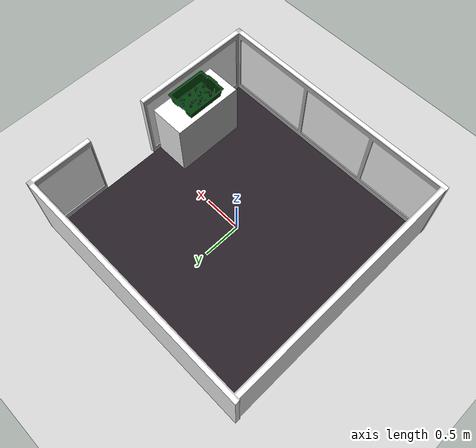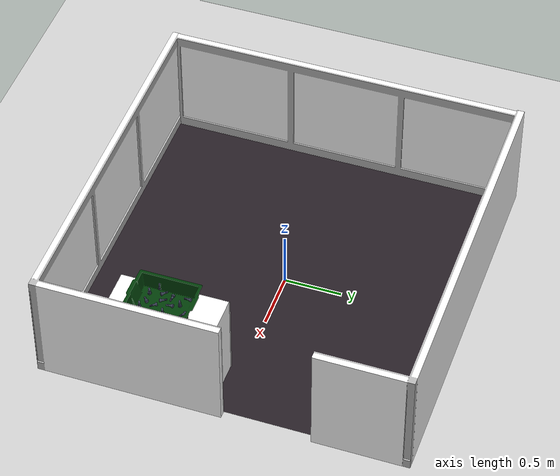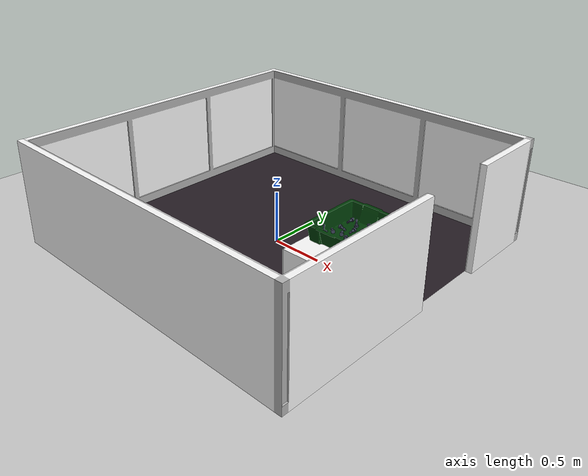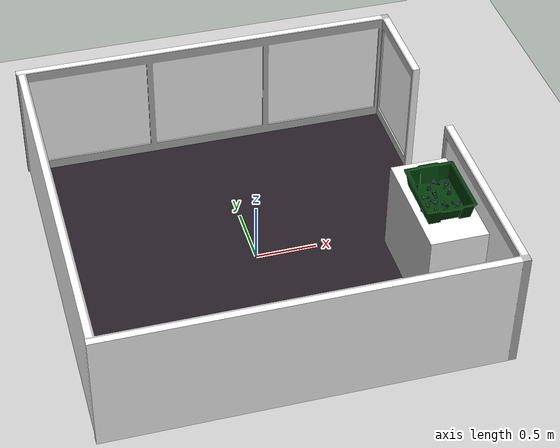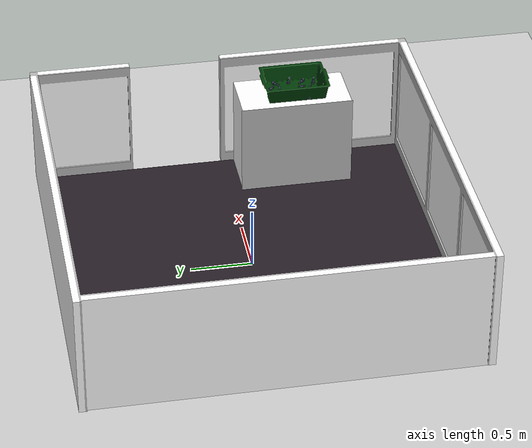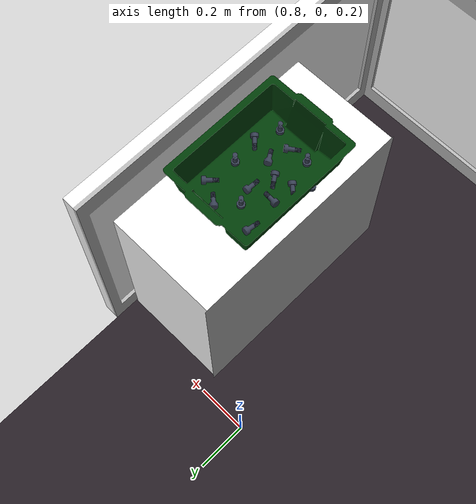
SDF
<?xml version="1.0" ?>
<sdf version="1.4">
  <world name="default">

    <include>
      <uri>model://ground_plane</uri>
      <pose>0 0 -0.005 0 0 0</pose>
    </include>

    <include>
      <uri>model://fetchit_arena</uri>
      <name>fetchit_arena1</name>
      <pose>0 0 0 0 0 0</pose>
    </include>

    <include>
      <uri>model://fetchit_table_em</uri>
      <name>fetchit_table_em1</name>
      <pose>1.28714 -0.565 0.0 0 0 -1.57</pose>
    </include>

    <include>
      <uri>model://screw_bin</uri>
      <name>screw_bin</name>
      <pose>1.273518 -0.580070 0.791994 0 0 -1.570000</pose>
    </include>

    <include>
      <uri>model://gearbox_bolt_grey</uri>
      <name>gearbox_bolt_grey1</name>
      <pose>1.19481 -0.727808 0.802789 0 0 0</pose>
    </include>

    <include>
      <uri>model://gearbox_bolt_grey</uri>
      <name>gearbox_bolt_grey2</name>
      <pose>1.11789 -0.669909 0.802789 0 0 0</pose>
    </include>

    <include>
      <uri>model://gearbox_bolt_grey</uri>
      <name>gearbox_bolt_grey3</name>
      <pose>1.350704 -0.754017 0.802789 0 0 -1.308124</pose>
    </include>

    <include>
      <uri>model://gearbox_bolt_grey</uri>
      <name>gearbox_bolt_grey4</name>
      <pose>1.243036 -0.450530 0.802789 0 0 0</pose>
    </include>

    <include>
      <uri>model://gearbox_bolt_grey</uri>
      <name>gearbox_bolt_grey5</name>
      <pose>1.370686 -0.549596 0.812789 0 0 0</pose>
    </include>

    <include>
      <uri>model://gearbox_bolt_grey</uri>
      <name>gearbox_bolt_grey6</name>
      <pose>1.268349 -0.497908 0.812789 -1.705541 -0.194300 -3.129138</pose>
    </include>

    <include>
      <uri>model://gearbox_bolt_grey</uri>
      <name>gearbox_bolt_grey7</name>
      <pose>1.179747 -0.635944 0.812789 -2.169015 -1.334226 1.451970</pose>
    </include>

    <include>
      <uri>model://gearbox_bolt_grey</uri>
      <name>gearbox_bolt_grey8</name>
      <pose>1.157317 -0.535487 0.812789 1.729658 0.582543 1.537639</pose>
    </include>

    <include>
      <uri>model://gearbox_bolt_grey</uri>
      <name>gearbox_bolt_grey9</name>
      <pose>1.299535 -0.376243 0.812789 1.705579 -0.194322 0.840076</pose>
    </include>

    <include>
      <uri>model://gearbox_bolt_grey</uri>
      <name>gearbox_bolt_grey10</name>
      <pose>1.161153 -0.385996 0.812789 -1.705525 -0.194450 3.048550</pose>
    </include>

    <include>
      <uri>model://gearbox_bolt_grey</uri>
      <name>gearbox_bolt_grey11</name>
      <pose>1.288459 -0.626789 0.812789 2.170262 -1.334160 -0.036304</pose>
    </include>

    <include>
      <uri>model://gearbox_bolt_grey</uri>
      <name>gearbox_bolt_grey12</name>
      <pose>1.405303 -0.419482 0.812789 1.729377 -0.582539 -0.796464</pose>
    </include>

    <include>
      <uri>model://gearbox_bolt_grey</uri>
      <name>gearbox_bolt_grey13</name>
      <pose>1.290790 -0.711409 0.812789 2.169131 -1.334256 -1.463483</pose>
    </include>

    <include>
      <uri>model://gearbox_bolt_grey</uri>
      <name>gearbox_bolt_grey14</name>
      <pose>1.405032 -0.680078 0.812789 -2.169053 1.334241 0.204366</pose>
    </include>

    <include>
      <uri>model://gearbox_bolt_grey</uri>
      <name>gearbox_bolt_grey15</name>
      <pose>1.246703 -0.623204 0.812789 -2.168823 -1.334070 1.183061</pose>
    </include>

    <light name='user_point_light_0' type='point'>
      <pose frame=''>1.0 1.0 3.5 0 0 0</pose>
      <diffuse>0.7 0.7 0.7 1</diffuse>
      <specular>0.1 0.1 0.1 1</specular>
      <attenuation>
        <range>10</range>
        <constant>0.5</constant>
        <linear>0.01</linear>
        <quadratic>0.001</quadratic>
      </attenuation>
      <cast_shadows>0</cast_shadows>
      <direction>0 0 -1</direction>
    </light>

    <light name='user_point_light_1' type='point'>
      <pose frame=''>-1.0 1.0 3.5 0 0 0</pose>
      <diffuse>0.7 0.7 0.7 1</diffuse>
      <specular>0.1 0.1 0.1 1</specular>
      <attenuation>
        <range>10</range>
        <constant>0.5</constant>
        <linear>0.01</linear>
        <quadratic>0.001</quadratic>
      </attenuation>
      <cast_shadows>0</cast_shadows>
      <direction>0 0 -1</direction>
    </light>

    <light name='user_point_light_2' type='point'>
      <pose frame=''>-1.0 -1.0 3.5 0 0 0</pose>
      <diffuse>0.7 0.7 0.7 1</diffuse>
      <specular>0.1 0.1 0.1 1</specular>
      <attenuation>
        <range>10</range>
        <constant>0.5</constant>
        <linear>0.01</linear>
        <quadratic>0.001</quadratic>
      </attenuation>
      <cast_shadows>0</cast_shadows>
      <direction>0 0 -1</direction>
    </light>

    <light name='user_point_light_3' type='point'>
      <pose frame=''>1.0 -1.0 3.5 0 0 0</pose>
      <diffuse>0.7 0.7 0.7 1</diffuse>
      <specular>0.1 0.1 0.1 1</specular>
      <attenuation>
        <range>10</range>
        <constant>0.5</constant>
        <linear>0.01</linear>
        <quadratic>0.001</quadratic>
      </attenuation>
      <cast_shadows>0</cast_shadows>
      <direction>0 0 -1</direction>
    </light>

  </world>
</sdf>

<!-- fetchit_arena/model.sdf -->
<sdf version='1.4'>
  <model name="fetchit_simple_env">
      <static>1</static>
      <link name='link'>
        <visual name='visual'>
          <geometry>
            <mesh>
              <uri>model://fetchit_arena/meshes/fetchit_arena1.dae</uri>
              <scale>1 1 1</scale>
            </mesh>
          </geometry>
        </visual>
        <collision name='collision'>
          <geometry>
            <mesh>
              <uri>model://fetchit_arena/meshes/fetchit_arena1.dae</uri>
              <scale>1 1 1</scale>
            </mesh>
          </geometry>
          <surface>
            <friction>
              <ode>
                <mu>30.0</mu>
                <mu2>30.0</mu2>
              </ode>
            </friction>
            <contact>
              <ode>
                <soft_cfm>0</soft_cfm>
    	          <soft_erp>0.2</soft_erp>
    	          <kp>1e+13</kp>
    	          <kd>1</kd>
    	          <max_vel>0.01</max_vel>
    	          <min_depth>0</min_depth>
              </ode>
            </contact>
          </surface>
        </collision>
        <velocity_decay>
          <linear>0.000000</linear>
          <angular>0.000000</angular>
        </velocity_decay>
        <self_collide>0</self_collide>
        <kinematic>0</kinematic>
        <gravity>1</gravity>
      </link>
  </model>
</sdf>

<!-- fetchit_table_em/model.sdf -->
<sdf version='1.4'>
  <model name="fetchit_table_em">
      <static>1</static>
      <link name='link'>
        <inertial>
          <mass>0.0592855</mass>
          <inertia>
            <ixx>2.31818050784e-05</ixx>
            <ixy>0.000000</ixy>
            <ixz>0.000000</ixz>
            <iyy>2.31851837098e-05</iyy>
            <iyz>0.000000</iyz>
            <izz>8.88944636856e-06</izz>
          </inertia>
        </inertial>
        <collision name='collision'>
          <geometry>
            <mesh>
              <uri>model://fetchit_table_em/meshes/simple_table.stl</uri>
              <scale>1 1 1</scale>
            </mesh>
          </geometry>
          <surface>
            <friction>
              <ode>
                <mu>30.0</mu>
                <mu2>30.0</mu2>
              </ode>
            </friction>
          </surface>
        </collision>
        <visual name='visual'>
          <geometry>
            <mesh>
              <uri>model://fetchit_table_em/meshes/table_EM.dae</uri>
              <scale>1 1 1</scale>
            </mesh>
          </geometry>
        </visual>
        <velocity_decay>
          <linear>0.000000</linear>
          <angular>0.000000</angular>
        </velocity_decay>
        <self_collide>0</self_collide>
        <kinematic>0</kinematic>
        <gravity>1</gravity>
      </link>
  </model>
</sdf>

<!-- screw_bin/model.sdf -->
<sdf version='1.4'>
  <model name="screw_bin">
      <static>0</static>
      <link name='link'>
        <inertial>
          <!-- Weight = 1.7lb -> 0.771107kg-->
          <mass>0.771107</mass>
          <inertia>
            <ixx>0.010364</ixx>
            <ixy>0.000000</ixy>
            <ixz>0.000000</ixz>
            <iyy>0.017619</iyy>
            <iyz>0.000000</iyz>
            <izz>0.025911</izz>
          </inertia>
        </inertial>
        <collision name='collision'>
          <geometry>
            <mesh>
              <uri>model://screw_bin/meshes/screw_bin.stl</uri>
              <scale>1 1 1</scale>
            </mesh>
          </geometry>
          <surface>
            <friction>
              <ode>
                <mu>30.0</mu>
                <mu2>30.0</mu2>
              </ode>
            </friction>
          </surface>
        </collision>
        <visual name='visual'>
          <geometry>
            <mesh>
              <uri>model://screw_bin/meshes/screw_bin.dae</uri>
              <scale>1 1 1</scale>
            </mesh>
          </geometry>
        </visual>
        <velocity_decay>
          <linear>0.000000</linear>
          <angular>0.000000</angular>
        </velocity_decay>
        <self_collide>0</self_collide>
        <kinematic>0</kinematic>
        <gravity>1</gravity>
      </link>
  </model>
</sdf>

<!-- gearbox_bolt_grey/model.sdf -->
<sdf version='1.4'>
  <model name="gearbox_bolt_grey">
      <static>0</static>
      <link name='link'>
        <inertial>
          <pose>0 0 0.030633 0 0 0</pose>
          <mass>0.0592855</mass>
          <inertia>
            <ixx>2.2977502034e-05</ixx>
            <ixy>0.000000</ixy>
            <ixz>0.000000</ixz>
            <iyy>2.29905352792e-05</iyy>
            <iyz>0.000000</iyz>
            <izz>8.87979175473e-06</izz>
          </inertia>
        </inertial>
        <collision name='collision'>
          <geometry>
            <mesh>
              <uri>model://gearbox_bolt_grey/meshes/gear_bolt_simple.stl</uri>
              <scale>1 1 1</scale>
            </mesh>
          </geometry>
          <surface>
            <friction>
              <ode>
                <mu>30.0</mu>
                <mu2>30.0</mu2>
              </ode>
            </friction>
          </surface>
        </collision>
        <visual name='visual'>
          <geometry>
            <mesh>
              <uri>model://gearbox_bolt_grey/meshes/screw_grey.dae</uri>
              <scale>1 1 1</scale>
            </mesh>
          </geometry>
        </visual>
        <velocity_decay>
          <linear>0.000000</linear>
          <angular>0.000000</angular>
        </velocity_decay>
        <self_collide>0</self_collide>
        <kinematic>0</kinematic>
        <gravity>1</gravity>
      </link>
  </model>
</sdf>
